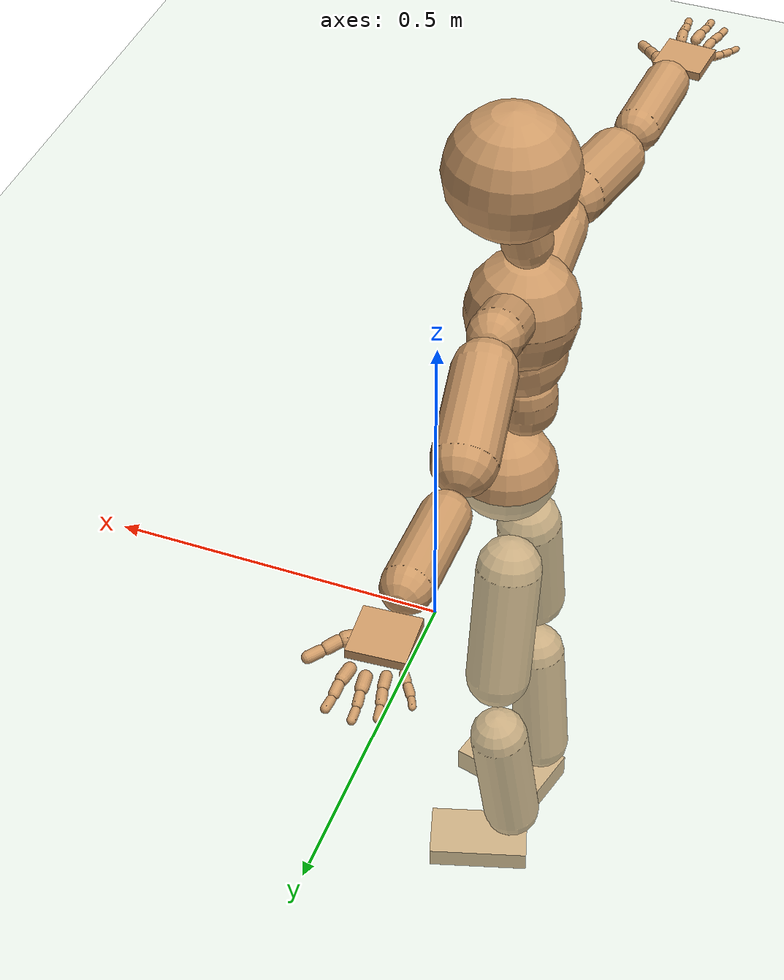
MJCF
<mujoco model="humanoid">
  <compiler coordinate="local" angle="radian"/>
  <default>
    <joint damping="0.0" armature="0.01" stiffness="0.0" limited="true"/>
    <geom conaffinity="1" condim="3" contype="7" margin="0.001" rgba="0.8 0.6 .4 1"/>
  </default>
  <asset>
    <texture type="skybox" builtin="gradient" rgb1=".4 .5 .6" rgb2="0 0 0" width="100" height="100"/>
    <texture builtin="flat" height="1278" mark="cross" markrgb="1 1 1" name="texgeom" random="0.01" rgb1="0.8 0.6 0.4" rgb2="0.8 0.6 0.4" type="cube" width="127"/>
    <texture builtin="checker" height="100" name="texplane" rgb1="0 0 0" rgb2="0.8 0.8 0.8" type="2d" width="100"/>
    <material name="MatPlane" reflectance="0.5" shininess="1" specular="1" texrepeat="60 60" texture="texplane"/>
    <material name="geom" texture="texgeom" texuniform="true"/>
  </asset>
  <worldbody>
    <light cutoff="100" diffuse="1 1 1" dir="-0 0 -1.3" directional="true" exponent="1" pos="0 0 1.3" specular=".1 .1 .1"/>
    <geom conaffinity="1" condim="3" name="floor" pos="0 0 0" rgba="0.8 0.9 0.8 1" size="100 100 .2" type="plane" material="MatPlane"/>
    <body name="Pelvis" pos="0.0005 -0.3226 -0.0007">
      <freejoint name="Pelvis"/>
      <geom type="sphere" contype="1" conaffinity="1" density="500" size="0.0812" pos="0.0000 0.0000 0.0000" name="Pelvis"/>
      <body name="L_Hip" pos="-0.0282 0.0451 -0.0817">
        <joint name="L_Hip_x" type="hinge" pos="0 0 0" axis="1 0 0" stiffness="800" damping="80" armature="0.02" range="-180.0000 180.0000"/>
        <joint name="L_Hip_y" type="hinge" pos="0 0 0" axis="0 1 0" stiffness="800" damping="80" armature="0.02" range="-180.0000 180.0000"/>
        <joint name="L_Hip_z" type="hinge" pos="0 0 0" axis="0 0 1" stiffness="800" damping="80" armature="0.02" range="-180.0000 180.0000"/>
        <geom type="capsule" contype="1" conaffinity="1" density="500" fromto="-0.0002 0.0134 -0.0706 -0.0008 0.0537 -0.2825" size="0.0529" name="L_Hip"/>
        <body name="L_Knee" pos="-0.001 0.0671 -0.3532">
          <joint name="L_Knee_x" type="hinge" pos="0 0 0" axis="1 0 0" stiffness="800" damping="80" armature="0.02" range="-180.0000 180.0000"/>
          <joint name="L_Knee_y" type="hinge" pos="0 0 0" axis="0 1 0" stiffness="800" damping="80" armature="0.02" range="-180.0000 180.0000"/>
          <joint name="L_Knee_z" type="hinge" pos="0 0 0" axis="0 0 1" stiffness="800" damping="80" armature="0.02" range="-180.0000 180.0000"/>
          <geom type="capsule" contype="1" conaffinity="1" density="500" fromto="-0.0067 -0.0080 -0.0720 -0.0270 -0.0321 -0.2879" size="0.0479" name="L_Knee"/>
          <body name="L_Ankle" pos="-0.0337 -0.0401 -0.3599">
            <joint name="L_Ankle_x" type="hinge" pos="0 0 0" axis="1 0 0" stiffness="800" damping="80" armature="0.02" range="-180.0000 180.0000"/>
            <joint name="L_Ankle_y" type="hinge" pos="0 0 0" axis="0 1 0" stiffness="800" damping="80" armature="0.02" range="-180.0000 180.0000"/>
            <joint name="L_Ankle_z" type="hinge" pos="0 0 0" axis="0 0 1" stiffness="800" damping="80" armature="0.02" range="-180.0000 180.0000"/>
            <geom type="box" contype="1" conaffinity="1" density="500" pos="0.0613 0.0188 -0.0254" size="0.0845 0.0476 0.0185" quat="0.9889 0.0000 0.0000 0.1483" name="L_Ankle"/>
            <body name="L_Toe" pos="0.1225 0.0376 -0.0508">
              <joint name="L_Toe_x" type="hinge" pos="0 0 0" axis="1 0 0" stiffness="500" damping="50" armature="0.02" range="-180.0000 180.0000"/>
              <joint name="L_Toe_y" type="hinge" pos="0 0 0" axis="0 1 0" stiffness="500" damping="50" armature="0.02" range="-180.0000 180.0000"/>
              <joint name="L_Toe_z" type="hinge" pos="0 0 0" axis="0 0 1" stiffness="500" damping="50" armature="0.02" range="-180.0000 180.0000"/>
              <geom type="box" contype="1" conaffinity="1" density="500" pos="0.0000 0.0000 0.0270" size="0.001 0.0023 0.001" quat="0.9882 0.0000 0.0000 0.1533" name="L_Toe"/>
            </body>
          </body>
        </body>
      </body>
      <body name="R_Hip" pos="-0.0213 -0.0465 -0.0911">
        <joint name="R_Hip_x" type="hinge" pos="0 0 0" axis="1 0 0" stiffness="800" damping="80" armature="0.02" range="-180.0000 180.0000"/>
        <joint name="R_Hip_y" type="hinge" pos="0 0 0" axis="0 1 0" stiffness="800" damping="80" armature="0.02" range="-180.0000 180.0000"/>
        <joint name="R_Hip_z" type="hinge" pos="0 0 0" axis="0 0 1" stiffness="800" damping="80" armature="0.02" range="-180.0000 180.0000"/>
        <geom type="capsule" contype="1" conaffinity="1" density="500" fromto="-0.0016 -0.0105 -0.0677 -0.0064 -0.0420 -0.2708" size="0.0527" name="R_Hip"/>
        <body name="R_Knee" pos="-0.008 -0.0525 -0.3384">
          <joint name="R_Knee_x" type="hinge" pos="0 0 0" axis="1 0 0" stiffness="800" damping="80" armature="0.02" range="-180.0000 180.0000"/>
          <joint name="R_Knee_y" type="hinge" pos="0 0 0" axis="0 1 0" stiffness="800" damping="80" armature="0.02" range="-180.0000 180.0000"/>
          <joint name="R_Knee_z" type="hinge" pos="0 0 0" axis="0 0 1" stiffness="800" damping="80" armature="0.02" range="-180.0000 180.0000"/>
          <geom type="capsule" contype="1" conaffinity="1" density="500" fromto="-0.0067 0.0033 -0.0743 -0.0269 0.0131 -0.2971" size="0.0476" name="R_Knee"/>
          <body name="R_Ankle" pos="-0.0336 0.0164 -0.3714">
            <joint name="R_Ankle_x" type="hinge" pos="0 0 0" axis="1 0 0" stiffness="800" damping="80" armature="0.02" range="-180.0000 180.0000"/>
            <joint name="R_Ankle_y" type="hinge" pos="0 0 0" axis="0 1 0" stiffness="800" damping="80" armature="0.02" range="-180.0000 180.0000"/>
            <joint name="R_Ankle_z" type="hinge" pos="0 0 0" axis="0 0 1" stiffness="800" damping="80" armature="0.02" range="-180.0000 180.0000"/>
            <geom type="box" contype="1" conaffinity="1" density="500" pos="0.0643 -0.0152 -0.0255" size="0.0845 0.0476 0.0224" quat="0.9933 0.0000 0.0000 -0.1156" name="R_Ankle"/>
            <body name="R_Toe" pos="0.1287 -0.0304 -0.051">
              <joint name="R_Toe_x" type="hinge" pos="0 0 0" axis="1 0 0" stiffness="500" damping="50" armature="0.02" range="-180.0000 180.0000"/>
              <joint name="R_Toe_y" type="hinge" pos="0 0 0" axis="0 1 0" stiffness="500" damping="50" armature="0.02" range="-180.0000 180.0000"/>
              <joint name="R_Toe_z" type="hinge" pos="0 0 0" axis="0 0 1" stiffness="500" damping="50" armature="0.02" range="-180.0000 180.0000"/>
              <geom type="box" contype="1" conaffinity="1" density="500" pos="0.0000 0.0000 0.0233" size="0.001 0.0023 0.001" quat="0.9943 0.0000 0.0000 -0.1067" name="R_Toe"/>
            </body>
          </body>
        </body>
      </body>
      <body name="Torso" pos="-0.0275 -0.0008 0.093">
        <joint name="Torso_x" type="hinge" pos="0 0 0" axis="1 0 0" stiffness="1000" damping="100" armature="0.02" range="-180.0000 180.0000"/>
        <joint name="Torso_y" type="hinge" pos="0 0 0" axis="0 1 0" stiffness="1000" damping="100" armature="0.02" range="-180.0000 180.0000"/>
        <joint name="Torso_z" type="hinge" pos="0 0 0" axis="0 0 1" stiffness="1000" damping="100" armature="0.02" range="-180.0000 180.0000"/>
        <geom type="capsule" contype="1" conaffinity="1" density="500" fromto="0.0023 0.0013 0.0792 0.0015 0.0009 0.0528" size="0.0493" name="Torso"/>
        <body name="Spine" pos="0.0038 0.0022 0.1321">
          <joint name="Spine_x" type="hinge" pos="0 0 0" axis="1 0 0" stiffness="1000" damping="100" armature="0.02" range="-180.0000 180.0000"/>
          <joint name="Spine_y" type="hinge" pos="0 0 0" axis="0 1 0" stiffness="1000" damping="100" armature="0.02" range="-180.0000 180.0000"/>
          <joint name="Spine_z" type="hinge" pos="0 0 0" axis="0 0 1" stiffness="1000" damping="100" armature="0.02" range="-180.0000 180.0000"/>
          <geom type="capsule" contype="1" conaffinity="1" density="500" fromto="0.0072 -0.0019 0.0309 0.0048 -0.0013 0.0206" size="0.0678" name="Spine"/>
          <body name="Chest" pos="0.012 -0.0032 0.0515">
            <joint name="Chest_x" type="hinge" pos="0 0 0" axis="1 0 0" stiffness="1000" damping="100" armature="0.02" range="-180.0000 180.0000"/>
            <joint name="Chest_y" type="hinge" pos="0 0 0" axis="0 1 0" stiffness="1000" damping="100" armature="0.02" range="-180.0000 180.0000"/>
            <joint name="Chest_z" type="hinge" pos="0 0 0" axis="0 0 1" stiffness="1000" damping="100" armature="0.02" range="-180.0000 180.0000"/>
            <geom type="capsule" contype="1" conaffinity="1" density="500" fromto="-0.0025 -0.0009 0.0541 -0.0017 -0.0006 0.0360" size="0.0867" name="Chest"/>
            <body name="Neck" pos="-0.0105 -0.0059 0.139">
              <joint name="Neck_x" type="hinge" pos="0 0 0" axis="1 0 0" stiffness="500" damping="50" armature="0.02" range="-180.0000 180.0000"/>
              <joint name="Neck_y" type="hinge" pos="0 0 0" axis="0 1 0" stiffness="500" damping="50" armature="0.02" range="-180.0000 180.0000"/>
              <joint name="Neck_z" type="hinge" pos="0 0 0" axis="0 0 1" stiffness="500" damping="50" armature="0.02" range="-180.0000 180.0000"/>
              <geom type="capsule" contype="1" conaffinity="1" density="500" fromto="0.0053 0.0040 0.0317 0.0213 0.0158 0.1270" size="0.0386" name="Neck"/>
              <body name="Head" pos="0.0266 0.0198 0.1587">
                <joint name="Head_x" type="hinge" pos="0 0 0" axis="1 0 0" stiffness="500" damping="50" armature="0.02" range="-180.0000 180.0000"/>
                <joint name="Head_y" type="hinge" pos="0 0 0" axis="0 1 0" stiffness="500" damping="50" armature="0.02" range="-180.0000 180.0000"/>
                <joint name="Head_z" type="hinge" pos="0 0 0" axis="0 0 1" stiffness="500" damping="50" armature="0.02" range="-180.0000 180.0000"/>
                <geom type="sphere" contype="1" conaffinity="1" density="500" size="0.1000" pos="0.0000 0.0000 0.0000" name="Head"/>
              </body>
            </body>
            <body name="L_Thorax" pos="0.001 0.039 0.0658">
              <joint name="L_Thorax_x" type="hinge" pos="0 0 0" axis="1 0 0" stiffness="500" damping="50" armature="0.02" range="-180.0000 180.0000"/>
              <joint name="L_Thorax_y" type="hinge" pos="0 0 0" axis="0 1 0" stiffness="500" damping="50" armature="0.02" range="-180.0000 180.0000"/>
              <joint name="L_Thorax_z" type="hinge" pos="0 0 0" axis="0 0 1" stiffness="500" damping="50" armature="0.02" range="-180.0000 180.0000"/>
              <geom type="capsule" contype="1" conaffinity="1" density="500" fromto="-0.0023 0.0255 0.0109 -0.0094 0.1019 0.0435" size="0.0421" name="L_Thorax"/>
              <body name="L_Shoulder" pos="-0.0117 0.1273 0.0544">
                <joint name="L_Shoulder_x" type="hinge" pos="0 0 0" axis="1 0 0" stiffness="500" damping="50" armature="0.02" range="-180.0000 180.0000"/>
                <joint name="L_Shoulder_y" type="hinge" pos="0 0 0" axis="0 1 0" stiffness="500" damping="50" armature="0.02" range="-180.0000 180.0000"/>
                <joint name="L_Shoulder_z" type="hinge" pos="0 0 0" axis="0 0 1" stiffness="500" damping="50" armature="0.02" range="-180.0000 180.0000"/>
                <geom type="capsule" contype="1" conaffinity="1" density="500" fromto="-0.0071 0.0469 -0.0134 -0.0286 0.1875 -0.0537" size="0.0478" name="L_Shoulder"/>
                <body name="L_Elbow" pos="-0.0357 0.2343 -0.0671">
                  <joint name="L_Elbow_x" type="hinge" pos="0 0 0" axis="1 0 0" stiffness="500" damping="50" armature="0.02" range="-720.0000 720.0000"/>
                  <joint name="L_Elbow_y" type="hinge" pos="0 0 0" axis="0 1 0" stiffness="500" damping="50" armature="0.02" range="-720.0000 720.0000"/>
                  <joint name="L_Elbow_z" type="hinge" pos="0 0 0" axis="0 0 1" stiffness="500" damping="50" armature="0.02" range="-720.0000 720.0000"/>
                  <geom type="capsule" contype="1" conaffinity="1" density="500" fromto="-0.0008 0.0491 0.0037 -0.0031 0.1963 0.0150" size="0.0361" name="L_Elbow"/>
                  <body name="L_Wrist" pos="-0.0039 0.2454 0.0187">
                    <joint name="L_Wrist_x" type="hinge" pos="0 0 0" axis="1 0 0" stiffness="300" damping="30" armature="0.02" range="-180.0000 180.0000"/>
                    <joint name="L_Wrist_y" type="hinge" pos="0 0 0" axis="0 1 0" stiffness="300" damping="30" armature="0.02" range="-180.0000 180.0000"/>
                    <joint name="L_Wrist_z" type="hinge" pos="0 0 0" axis="0 0 1" stiffness="300" damping="30" armature="0.02" range="-180.0000 180.0000"/>
                    <geom type="box" contype="1" conaffinity="1" density="500" pos="-0.0028 0.0395 -0.0057" size="0.0391 0.0395 0.007" quat="0.7316 0.0000 0.0000 -0.6817" name="L_Wrist"/>
                    <body name="L_Index1" pos="0.0188 0.093 -0.009">
                      <joint name="L_Index1_x" type="hinge" pos="0 0 0" axis="1 0 0" stiffness="100" damping="10" armature="0.02" range="-180.0000 180.0000"/>
                      <joint name="L_Index1_y" type="hinge" pos="0 0 0" axis="0 1 0" stiffness="100" damping="10" armature="0.02" range="-180.0000 180.0000"/>
                      <joint name="L_Index1_z" type="hinge" pos="0 0 0" axis="0 0 1" stiffness="100" damping="10" armature="0.02" range="-180.0000 180.0000"/>
                      <geom type="capsule" contype="1" conaffinity="1" density="500" fromto="0.0007 0.0063 0.0002 0.0029 0.0253 0.0010" size="0.0088" name="L_Index1"/>
                      <body name="L_Index2" pos="0.0036 0.0316 0.0012">
                        <joint name="L_Index2_x" type="hinge" pos="0 0 0" axis="1 0 0" stiffness="100" damping="10" armature="0.02" range="-180.0000 180.0000"/>
                        <joint name="L_Index2_y" type="hinge" pos="0 0 0" axis="0 1 0" stiffness="100" damping="10" armature="0.02" range="-180.0000 180.0000"/>
                        <joint name="L_Index2_z" type="hinge" pos="0 0 0" axis="0 0 1" stiffness="100" damping="10" armature="0.02" range="-180.0000 180.0000"/>
                        <geom type="capsule" contype="1" conaffinity="1" density="500" fromto="-0.0000 0.0045 -0.0005 -0.0000 0.0180 -0.0021" size="0.0074" name="L_Index2"/>
                        <body name="L_Index3" pos="0 0.0225 -0.0026">
                          <joint name="L_Index3_x" type="hinge" pos="0 0 0" axis="1 0 0" stiffness="100" damping="10" armature="0.02" range="-180.0000 180.0000"/>
                          <joint name="L_Index3_y" type="hinge" pos="0 0 0" axis="0 1 0" stiffness="100" damping="10" armature="0.02" range="-180.0000 180.0000"/>
                          <joint name="L_Index3_z" type="hinge" pos="0 0 0" axis="0 0 1" stiffness="100" damping="10" armature="0.02" range="-180.0000 180.0000"/>
                          <geom type="capsule" contype="1" conaffinity="1" density="500" fromto="0.0004 0.0049 -0.0001 0.0016 0.0196 -0.0005" size="0.0063" name="L_Index3"/>
                        </body>
                      </body>
                    </body>
                    <body name="L_Middle1" pos="-0.0033 0.1005 -0.0068">
                      <joint name="L_Middle1_x" type="hinge" pos="0 0 0" axis="1 0 0" stiffness="100" damping="10" armature="0.02" range="-180.0000 180.0000"/>
                      <joint name="L_Middle1_y" type="hinge" pos="0 0 0" axis="0 1 0" stiffness="100" damping="10" armature="0.02" range="-180.0000 180.0000"/>
                      <joint name="L_Middle1_z" type="hinge" pos="0 0 0" axis="0 0 1" stiffness="100" damping="10" armature="0.02" range="-180.0000 180.0000"/>
                      <geom type="capsule" contype="1" conaffinity="1" density="500" fromto="-0.0008 0.0060 0.0000 -0.0032 0.0242 0.0000" size="0.0089" name="L_Middle1"/>
                      <body name="L_Middle2" pos="-0.0039 0.0302 0">
                        <joint name="L_Middle2_x" type="hinge" pos="0 0 0" axis="1 0 0" stiffness="100" damping="10" armature="0.02" range="-180.0000 180.0000"/>
                        <joint name="L_Middle2_y" type="hinge" pos="0 0 0" axis="0 1 0" stiffness="100" damping="10" armature="0.02" range="-180.0000 180.0000"/>
                        <joint name="L_Middle2_z" type="hinge" pos="0 0 0" axis="0 0 1" stiffness="100" damping="10" armature="0.02" range="-180.0000 180.0000"/>
                        <geom type="capsule" contype="1" conaffinity="1" density="500" fromto="-0.0008 0.0046 -0.0005 -0.0032 0.0185 -0.0019" size="0.0067" name="L_Middle2"/>
                        <body name="L_Middle3" pos="-0.004 0.0231 -0.0023">
                          <joint name="L_Middle3_x" type="hinge" pos="0 0 0" axis="1 0 0" stiffness="100" damping="10" armature="0.02" range="-180.0000 180.0000"/>
                          <joint name="L_Middle3_y" type="hinge" pos="0 0 0" axis="0 1 0" stiffness="100" damping="10" armature="0.02" range="-180.0000 180.0000"/>
                          <joint name="L_Middle3_z" type="hinge" pos="0 0 0" axis="0 0 1" stiffness="100" damping="10" armature="0.02" range="-180.0000 180.0000"/>
                          <geom type="capsule" contype="1" conaffinity="1" density="500" fromto="-0.0004 0.0050 -0.0001 -0.0016 0.0201 -0.0003" size="0.006" name="L_Middle3"/>
                        </body>
                      </body>
                    </body>
                    <body name="L_Pinky1" pos="-0.042 0.0767 -0.0138">
                      <joint name="L_Pinky1_x" type="hinge" pos="0 0 0" axis="1 0 0" stiffness="100" damping="10" armature="0.02" range="-180.0000 180.0000"/>
                      <joint name="L_Pinky1_y" type="hinge" pos="0 0 0" axis="0 1 0" stiffness="100" damping="10" armature="0.02" range="-180.0000 180.0000"/>
                      <joint name="L_Pinky1_z" type="hinge" pos="0 0 0" axis="0 0 1" stiffness="100" damping="10" armature="0.02" range="-180.0000 180.0000"/>
                      <geom type="capsule" contype="1" conaffinity="1" density="500" fromto="-0.0023 0.0032 -0.0003 -0.0090 0.0128 -0.0014" size="0.0065" name="L_Pinky1"/>
                      <body name="L_Pinky2" pos="-0.0113 0.016 -0.0017">
                        <joint name="L_Pinky2_x" type="hinge" pos="0 0 0" axis="1 0 0" stiffness="100" damping="10" armature="0.02" range="-180.0000 180.0000"/>
                        <joint name="L_Pinky2_y" type="hinge" pos="0 0 0" axis="0 1 0" stiffness="100" damping="10" armature="0.02" range="-180.0000 180.0000"/>
                        <joint name="L_Pinky2_z" type="hinge" pos="0 0 0" axis="0 0 1" stiffness="100" damping="10" armature="0.02" range="-180.0000 180.0000"/>
                        <geom type="capsule" contype="1" conaffinity="1" density="500" fromto="-0.0022 0.0032 -0.0004 -0.0086 0.0126 -0.0014" size="0.0063" name="L_Pinky2"/>
                        <body name="L_Pinky3" pos="-0.0108 0.0158 -0.0018">
                          <joint name="L_Pinky3_x" type="hinge" pos="0 0 0" axis="1 0 0" stiffness="100" damping="10" armature="0.02" range="-180.0000 180.0000"/>
                          <joint name="L_Pinky3_y" type="hinge" pos="0 0 0" axis="0 1 0" stiffness="100" damping="10" armature="0.02" range="-180.0000 180.0000"/>
                          <joint name="L_Pinky3_z" type="hinge" pos="0 0 0" axis="0 0 1" stiffness="100" damping="10" armature="0.02" range="-180.0000 180.0000"/>
                          <geom type="capsule" contype="1" conaffinity="1" density="500" fromto="-0.0018 0.0036 0.0000 -0.0070 0.0142 0.0002" size="0.0049" name="L_Pinky3"/>
                        </body>
                      </body>
                    </body>
                    <body name="L_Ring1" pos="-0.0257 0.0892 -0.0091">
                      <joint name="L_Ring1_x" type="hinge" pos="0 0 0" axis="1 0 0" stiffness="100" damping="10" armature="0.02" range="-180.0000 180.0000"/>
                      <joint name="L_Ring1_y" type="hinge" pos="0 0 0" axis="0 1 0" stiffness="100" damping="10" armature="0.02" range="-180.0000 180.0000"/>
                      <joint name="L_Ring1_z" type="hinge" pos="0 0 0" axis="0 0 1" stiffness="100" damping="10" armature="0.02" range="-180.0000 180.0000"/>
                      <geom type="capsule" contype="1" conaffinity="1" density="500" fromto="-0.0009 0.0055 0.0001 -0.0037 0.0222 0.0003" size="0.0076" name="L_Ring1"/>
                      <body name="L_Ring2" pos="-0.0047 0.0277 0.0004">
                        <joint name="L_Ring2_x" type="hinge" pos="0 0 0" axis="1 0 0" stiffness="100" damping="10" armature="0.02" range="-180.0000 180.0000"/>
                        <joint name="L_Ring2_y" type="hinge" pos="0 0 0" axis="0 1 0" stiffness="100" damping="10" armature="0.02" range="-180.0000 180.0000"/>
                        <joint name="L_Ring2_z" type="hinge" pos="0 0 0" axis="0 0 1" stiffness="100" damping="10" armature="0.02" range="-180.0000 180.0000"/>
                        <geom type="capsule" contype="1" conaffinity="1" density="500" fromto="-0.0013 0.0045 -0.0004 -0.0051 0.0181 -0.0016" size="0.0072" name="L_Ring2"/>
                        <body name="L_Ring3" pos="-0.0064 0.0227 -0.002">
                          <joint name="L_Ring3_x" type="hinge" pos="0 0 0" axis="1 0 0" stiffness="100" damping="10" armature="0.02" range="-180.0000 180.0000"/>
                          <joint name="L_Ring3_y" type="hinge" pos="0 0 0" axis="0 1 0" stiffness="100" damping="10" armature="0.02" range="-180.0000 180.0000"/>
                          <joint name="L_Ring3_z" type="hinge" pos="0 0 0" axis="0 0 1" stiffness="100" damping="10" armature="0.02" range="-180.0000 180.0000"/>
                          <geom type="capsule" contype="1" conaffinity="1" density="500" fromto="-0.0009 0.0049 -0.0000 -0.0035 0.0197 -0.0000" size="0.0057" name="L_Ring3"/>
                        </body>
                      </body>
                    </body>
                    <body name="L_Thumb1" pos="0.0242 0.0355 -0.0186">
                      <joint name="L_Thumb1_x" type="hinge" pos="0 0 0" axis="1 0 0" stiffness="100" damping="10" armature="0.02" range="-180.0000 180.0000"/>
                      <joint name="L_Thumb1_y" type="hinge" pos="0 0 0" axis="0 1 0" stiffness="100" damping="10" armature="0.02" range="-180.0000 180.0000"/>
                      <joint name="L_Thumb1_z" type="hinge" pos="0 0 0" axis="0 0 1" stiffness="100" damping="10" armature="0.02" range="-180.0000 180.0000"/>
                      <geom type="capsule" contype="1" conaffinity="1" density="500" fromto="0.0051 0.0031 0.0003 0.0203 0.0126 0.0012" size="0.0114" name="L_Thumb1"/>
                      <body name="L_Thumb2" pos="0.0253 0.0157 0.0015">
                        <joint name="L_Thumb2_x" type="hinge" pos="0 0 0" axis="1 0 0" stiffness="100" damping="10" armature="0.02" range="-180.0000 180.0000"/>
                        <joint name="L_Thumb2_y" type="hinge" pos="0 0 0" axis="0 1 0" stiffness="100" damping="10" armature="0.02" range="-180.0000 180.0000"/>
                        <joint name="L_Thumb2_z" type="hinge" pos="0 0 0" axis="0 0 1" stiffness="100" damping="10" armature="0.02" range="-180.0000 180.0000"/>
                        <geom type="capsule" contype="1" conaffinity="1" density="500" fromto="0.0032 0.0039 -0.0009 0.0129 0.0155 -0.0036" size="0.0092" name="L_Thumb2"/>
                        <body name="L_Thumb3" pos="0.0162 0.0193 -0.0045">
                          <joint name="L_Thumb3_x" type="hinge" pos="0 0 0" axis="1 0 0" stiffness="100" damping="10" armature="0.02" range="-180.0000 180.0000"/>
                          <joint name="L_Thumb3_y" type="hinge" pos="0 0 0" axis="0 1 0" stiffness="100" damping="10" armature="0.02" range="-180.0000 180.0000"/>
                          <joint name="L_Thumb3_z" type="hinge" pos="0 0 0" axis="0 0 1" stiffness="100" damping="10" armature="0.02" range="-180.0000 180.0000"/>
                          <geom type="capsule" contype="1" conaffinity="1" density="500" fromto="0.0036 0.0043 -0.0005 0.0145 0.0171 -0.0020" size="0.0084" name="L_Thumb3"/>
                        </body>
                      </body>
                    </body>
                  </body>
                </body>
              </body>
            </body>
            <body name="R_Thorax" pos="-0.0032 -0.0374 0.0657">
              <joint name="R_Thorax_x" type="hinge" pos="0 0 0" axis="1 0 0" stiffness="500" damping="50" armature="0.02" range="-180.0000 180.0000"/>
              <joint name="R_Thorax_y" type="hinge" pos="0 0 0" axis="0 1 0" stiffness="500" damping="50" armature="0.02" range="-180.0000 180.0000"/>
              <joint name="R_Thorax_z" type="hinge" pos="0 0 0" axis="0 0 1" stiffness="500" damping="50" armature="0.02" range="-180.0000 180.0000"/>
              <geom type="capsule" contype="1" conaffinity="1" density="500" fromto="-0.0010 -0.0239 0.0108 -0.0041 -0.0955 0.0433" size="0.0492" name="R_Thorax"/>
              <body name="R_Shoulder" pos="-0.0051 -0.1194 0.0541">
                <joint name="R_Shoulder_x" type="hinge" pos="0 0 0" axis="1 0 0" stiffness="500" damping="50" armature="0.02" range="-180.0000 180.0000"/>
                <joint name="R_Shoulder_y" type="hinge" pos="0 0 0" axis="0 1 0" stiffness="500" damping="50" armature="0.02" range="-180.0000 180.0000"/>
                <joint name="R_Shoulder_z" type="hinge" pos="0 0 0" axis="0 0 1" stiffness="500" damping="50" armature="0.02" range="-180.0000 180.0000"/>
                <geom type="capsule" contype="1" conaffinity="1" density="500" fromto="-0.0058 -0.0497 -0.0086 -0.0234 -0.1990 -0.0345" size="0.0471" name="R_Shoulder"/>
                <body name="R_Elbow" pos="-0.0292 -0.2487 -0.0431">
                  <joint name="R_Elbow_x" type="hinge" pos="0 0 0" axis="1 0 0" stiffness="500" damping="50" armature="0.02" range="-720.0000 720.0000"/>
                  <joint name="R_Elbow_y" type="hinge" pos="0 0 0" axis="0 1 0" stiffness="500" damping="50" armature="0.02" range="-720.0000 720.0000"/>
                  <joint name="R_Elbow_z" type="hinge" pos="0 0 0" axis="0 0 1" stiffness="500" damping="50" armature="0.02" range="-720.0000 720.0000"/>
                  <geom type="capsule" contype="1" conaffinity="1" density="500" fromto="-0.0024 -0.0476 -0.0004 -0.0095 -0.1905 -0.0015" size="0.0369" name="R_Elbow"/>
                  <body name="R_Wrist" pos="-0.0119 -0.2381 -0.0019">
                    <joint name="R_Wrist_x" type="hinge" pos="0 0 0" axis="1 0 0" stiffness="300" damping="30" armature="0.02" range="-180.0000 180.0000"/>
                    <joint name="R_Wrist_y" type="hinge" pos="0 0 0" axis="0 1 0" stiffness="300" damping="30" armature="0.02" range="-180.0000 180.0000"/>
                    <joint name="R_Wrist_z" type="hinge" pos="0 0 0" axis="0 0 1" stiffness="300" damping="30" armature="0.02" range="-180.0000 180.0000"/>
                    <geom type="box" contype="1" conaffinity="1" density="500" pos="-0.0033 -0.0394 -0.0072" size="0.0391 0.0407 0.0071" quat="0.7360 0.0000 0.0000 0.6770" name="R_Wrist"/>
                    <body name="R_Index1" pos="0.0178 -0.0929 -0.012">
                      <joint name="R_Index1_x" type="hinge" pos="0 0 0" axis="1 0 0" stiffness="100" damping="10" armature="0.02" range="-180.0000 180.0000"/>
                      <joint name="R_Index1_y" type="hinge" pos="0 0 0" axis="0 1 0" stiffness="100" damping="10" armature="0.02" range="-180.0000 180.0000"/>
                      <joint name="R_Index1_z" type="hinge" pos="0 0 0" axis="0 0 1" stiffness="100" damping="10" armature="0.02" range="-180.0000 180.0000"/>
                      <geom type="capsule" contype="1" conaffinity="1" density="500" fromto="0.0007 -0.0063 0.0002 0.0029 -0.0253 0.0010" size="0.0088" name="R_Index1"/>
                      <body name="R_Index2" pos="0.0036 -0.0316 0.0012">
                        <joint name="R_Index2_x" type="hinge" pos="0 0 0" axis="1 0 0" stiffness="100" damping="10" armature="0.02" range="-180.0000 180.0000"/>
                        <joint name="R_Index2_y" type="hinge" pos="0 0 0" axis="0 1 0" stiffness="100" damping="10" armature="0.02" range="-180.0000 180.0000"/>
                        <joint name="R_Index2_z" type="hinge" pos="0 0 0" axis="0 0 1" stiffness="100" damping="10" armature="0.02" range="-180.0000 180.0000"/>
                        <geom type="capsule" contype="1" conaffinity="1" density="500" fromto="-0.0000 -0.0045 -0.0005 -0.0000 -0.0180 -0.0021" size="0.0074" name="R_Index2"/>
                        <body name="R_Index3" pos="0 -0.0225 -0.0026">
                          <joint name="R_Index3_x" type="hinge" pos="0 0 0" axis="1 0 0" stiffness="100" damping="10" armature="0.02" range="-180.0000 180.0000"/>
                          <joint name="R_Index3_y" type="hinge" pos="0 0 0" axis="0 1 0" stiffness="100" damping="10" armature="0.02" range="-180.0000 180.0000"/>
                          <joint name="R_Index3_z" type="hinge" pos="0 0 0" axis="0 0 1" stiffness="100" damping="10" armature="0.02" range="-180.0000 180.0000"/>
                          <geom type="capsule" contype="1" conaffinity="1" density="500" fromto="0.0004 -0.0041 -0.0001 0.0016 -0.0164 -0.0005" size="0.0066" name="R_Index3"/>
                        </body>
                      </body>
                    </body>
                    <body name="R_Middle1" pos="-0.0043 -0.1004 -0.0098">
                      <joint name="R_Middle1_x" type="hinge" pos="0 0 0" axis="1 0 0" stiffness="100" damping="10" armature="0.02" range="-180.0000 180.0000"/>
                      <joint name="R_Middle1_y" type="hinge" pos="0 0 0" axis="0 1 0" stiffness="100" damping="10" armature="0.02" range="-180.0000 180.0000"/>
                      <joint name="R_Middle1_z" type="hinge" pos="0 0 0" axis="0 0 1" stiffness="100" damping="10" armature="0.02" range="-180.0000 180.0000"/>
                      <geom type="capsule" contype="1" conaffinity="1" density="500" fromto="-0.0008 -0.0060 0.0000 -0.0032 -0.0242 0.0000" size="0.0089" name="R_Middle1"/>
                      <body name="R_Middle2" pos="-0.0039 -0.0302 0">
                        <joint name="R_Middle2_x" type="hinge" pos="0 0 0" axis="1 0 0" stiffness="100" damping="10" armature="0.02" range="-180.0000 180.0000"/>
                        <joint name="R_Middle2_y" type="hinge" pos="0 0 0" axis="0 1 0" stiffness="100" damping="10" armature="0.02" range="-180.0000 180.0000"/>
                        <joint name="R_Middle2_z" type="hinge" pos="0 0 0" axis="0 0 1" stiffness="100" damping="10" armature="0.02" range="-180.0000 180.0000"/>
                        <geom type="capsule" contype="1" conaffinity="1" density="500" fromto="-0.0008 -0.0046 -0.0005 -0.0032 -0.0185 -0.0019" size="0.0067" name="R_Middle2"/>
                        <body name="R_Middle3" pos="-0.004 -0.0231 -0.0023">
                          <joint name="R_Middle3_x" type="hinge" pos="0 0 0" axis="1 0 0" stiffness="100" damping="10" armature="0.02" range="-180.0000 180.0000"/>
                          <joint name="R_Middle3_y" type="hinge" pos="0 0 0" axis="0 1 0" stiffness="100" damping="10" armature="0.02" range="-180.0000 180.0000"/>
                          <joint name="R_Middle3_z" type="hinge" pos="0 0 0" axis="0 0 1" stiffness="100" damping="10" armature="0.02" range="-180.0000 180.0000"/>
                          <geom type="capsule" contype="1" conaffinity="1" density="500" fromto="-0.0004 -0.0042 -0.0001 -0.0016 -0.0169 -0.0003" size="0.0063" name="R_Middle3"/>
                        </body>
                      </body>
                    </body>
                    <body name="R_Pinky1" pos="-0.043 -0.0766 -0.0168">
                      <joint name="R_Pinky1_x" type="hinge" pos="0 0 0" axis="1 0 0" stiffness="100" damping="10" armature="0.02" range="-180.0000 180.0000"/>
                      <joint name="R_Pinky1_y" type="hinge" pos="0 0 0" axis="0 1 0" stiffness="100" damping="10" armature="0.02" range="-180.0000 180.0000"/>
                      <joint name="R_Pinky1_z" type="hinge" pos="0 0 0" axis="0 0 1" stiffness="100" damping="10" armature="0.02" range="-180.0000 180.0000"/>
                      <geom type="capsule" contype="1" conaffinity="1" density="500" fromto="-0.0023 -0.0032 -0.0003 -0.0090 -0.0128 -0.0014" size="0.0065" name="R_Pinky1"/>
                      <body name="R_Pinky2" pos="-0.0113 -0.016 -0.0017">
                        <joint name="R_Pinky2_x" type="hinge" pos="0 0 0" axis="1 0 0" stiffness="100" damping="10" armature="0.02" range="-180.0000 180.0000"/>
                        <joint name="R_Pinky2_y" type="hinge" pos="0 0 0" axis="0 1 0" stiffness="100" damping="10" armature="0.02" range="-180.0000 180.0000"/>
                        <joint name="R_Pinky2_z" type="hinge" pos="0 0 0" axis="0 0 1" stiffness="100" damping="10" armature="0.02" range="-180.0000 180.0000"/>
                        <geom type="capsule" contype="1" conaffinity="1" density="500" fromto="-0.0022 -0.0032 -0.0004 -0.0086 -0.0126 -0.0014" size="0.0063" name="R_Pinky2"/>
                        <body name="R_Pinky3" pos="-0.0108 -0.0158 -0.0018">
                          <joint name="R_Pinky3_x" type="hinge" pos="0 0 0" axis="1 0 0" stiffness="100" damping="10" armature="0.02" range="-180.0000 180.0000"/>
                          <joint name="R_Pinky3_y" type="hinge" pos="0 0 0" axis="0 1 0" stiffness="100" damping="10" armature="0.02" range="-180.0000 180.0000"/>
                          <joint name="R_Pinky3_z" type="hinge" pos="0 0 0" axis="0 0 1" stiffness="100" damping="10" armature="0.02" range="-180.0000 180.0000"/>
                          <geom type="capsule" contype="1" conaffinity="1" density="500" fromto="-0.0018 -0.0028 0.0000 -0.0070 -0.0110 0.0002" size="0.0051" name="R_Pinky3"/>
                        </body>
                      </body>
                    </body>
                    <body name="R_Ring1" pos="-0.0267 -0.0891 -0.0121">
                      <joint name="R_Ring1_x" type="hinge" pos="0 0 0" axis="1 0 0" stiffness="100" damping="10" armature="0.02" range="-180.0000 180.0000"/>
                      <joint name="R_Ring1_y" type="hinge" pos="0 0 0" axis="0 1 0" stiffness="100" damping="10" armature="0.02" range="-180.0000 180.0000"/>
                      <joint name="R_Ring1_z" type="hinge" pos="0 0 0" axis="0 0 1" stiffness="100" damping="10" armature="0.02" range="-180.0000 180.0000"/>
                      <geom type="capsule" contype="1" conaffinity="1" density="500" fromto="-0.0009 -0.0055 0.0001 -0.0037 -0.0222 0.0003" size="0.0076" name="R_Ring1"/>
                      <body name="R_Ring2" pos="-0.0047 -0.0277 0.0004">
                        <joint name="R_Ring2_x" type="hinge" pos="0 0 0" axis="1 0 0" stiffness="100" damping="10" armature="0.02" range="-180.0000 180.0000"/>
                        <joint name="R_Ring2_y" type="hinge" pos="0 0 0" axis="0 1 0" stiffness="100" damping="10" armature="0.02" range="-180.0000 180.0000"/>
                        <joint name="R_Ring2_z" type="hinge" pos="0 0 0" axis="0 0 1" stiffness="100" damping="10" armature="0.02" range="-180.0000 180.0000"/>
                        <geom type="capsule" contype="1" conaffinity="1" density="500" fromto="-0.0013 -0.0045 -0.0004 -0.0051 -0.0181 -0.0016" size="0.0072" name="R_Ring2"/>
                        <body name="R_Ring3" pos="-0.0064 -0.0227 -0.002">
                          <joint name="R_Ring3_x" type="hinge" pos="0 0 0" axis="1 0 0" stiffness="100" damping="10" armature="0.02" range="-180.0000 180.0000"/>
                          <joint name="R_Ring3_y" type="hinge" pos="0 0 0" axis="0 1 0" stiffness="100" damping="10" armature="0.02" range="-180.0000 180.0000"/>
                          <joint name="R_Ring3_z" type="hinge" pos="0 0 0" axis="0 0 1" stiffness="100" damping="10" armature="0.02" range="-180.0000 180.0000"/>
                          <geom type="capsule" contype="1" conaffinity="1" density="500" fromto="-0.0009 -0.0041 -0.0000 -0.0035 -0.0165 -0.0000" size="0.0059" name="R_Ring3"/>
                        </body>
                      </body>
                    </body>
                    <body name="R_Thumb1" pos="0.0232 -0.0354 -0.0216">
                      <joint name="R_Thumb1_x" type="hinge" pos="0 0 0" axis="1 0 0" stiffness="100" damping="10" armature="0.02" range="-180.0000 180.0000"/>
                      <joint name="R_Thumb1_y" type="hinge" pos="0 0 0" axis="0 1 0" stiffness="100" damping="10" armature="0.02" range="-180.0000 180.0000"/>
                      <joint name="R_Thumb1_z" type="hinge" pos="0 0 0" axis="0 0 1" stiffness="100" damping="10" armature="0.02" range="-180.0000 180.0000"/>
                      <geom type="capsule" contype="1" conaffinity="1" density="500" fromto="0.0051 -0.0031 0.0003 0.0203 -0.0126 0.0012" size="0.0114" name="R_Thumb1"/>
                      <body name="R_Thumb2" pos="0.0253 -0.0157 0.0015">
                        <joint name="R_Thumb2_x" type="hinge" pos="0 0 0" axis="1 0 0" stiffness="100" damping="10" armature="0.02" range="-180.0000 180.0000"/>
                        <joint name="R_Thumb2_y" type="hinge" pos="0 0 0" axis="0 1 0" stiffness="100" damping="10" armature="0.02" range="-180.0000 180.0000"/>
                        <joint name="R_Thumb2_z" type="hinge" pos="0 0 0" axis="0 0 1" stiffness="100" damping="10" armature="0.02" range="-180.0000 180.0000"/>
                        <geom type="capsule" contype="1" conaffinity="1" density="500" fromto="0.0032 -0.0039 -0.0009 0.0129 -0.0155 -0.0036" size="0.0092" name="R_Thumb2"/>
                        <body name="R_Thumb3" pos="0.0162 -0.0193 -0.0045">
                          <joint name="R_Thumb3_x" type="hinge" pos="0 0 0" axis="1 0 0" stiffness="100" damping="10" armature="0.02" range="-180.0000 180.0000"/>
                          <joint name="R_Thumb3_y" type="hinge" pos="0 0 0" axis="0 1 0" stiffness="100" damping="10" armature="0.02" range="-180.0000 180.0000"/>
                          <joint name="R_Thumb3_z" type="hinge" pos="0 0 0" axis="0 0 1" stiffness="100" damping="10" armature="0.02" range="-180.0000 180.0000"/>
                          <geom type="capsule" contype="1" conaffinity="1" density="500" fromto="0.0036 -0.0035 -0.0005 0.0145 -0.0139 -0.0020" size="0.0087" name="R_Thumb3"/>
                        </body>
                      </body>
                    </body>
                  </body>
                </body>
              </body>
            </body>
          </body>
        </body>
      </body>
    </body>
  </worldbody>
  <actuator>
    <motor name="L_Hip_x" joint="L_Hip_x" gear="500"/>
    <motor name="L_Hip_y" joint="L_Hip_y" gear="500"/>
    <motor name="L_Hip_z" joint="L_Hip_z" gear="500"/>
    <motor name="L_Knee_x" joint="L_Knee_x" gear="500"/>
    <motor name="L_Knee_y" joint="L_Knee_y" gear="500"/>
    <motor name="L_Knee_z" joint="L_Knee_z" gear="500"/>
    <motor name="L_Ankle_x" joint="L_Ankle_x" gear="500"/>
    <motor name="L_Ankle_y" joint="L_Ankle_y" gear="500"/>
    <motor name="L_Ankle_z" joint="L_Ankle_z" gear="500"/>
    <motor name="L_Toe_x" joint="L_Toe_x" gear="500"/>
    <motor name="L_Toe_y" joint="L_Toe_y" gear="500"/>
    <motor name="L_Toe_z" joint="L_Toe_z" gear="500"/>
    <motor name="R_Hip_x" joint="R_Hip_x" gear="500"/>
    <motor name="R_Hip_y" joint="R_Hip_y" gear="500"/>
    <motor name="R_Hip_z" joint="R_Hip_z" gear="500"/>
    <motor name="R_Knee_x" joint="R_Knee_x" gear="500"/>
    <motor name="R_Knee_y" joint="R_Knee_y" gear="500"/>
    <motor name="R_Knee_z" joint="R_Knee_z" gear="500"/>
    <motor name="R_Ankle_x" joint="R_Ankle_x" gear="500"/>
    <motor name="R_Ankle_y" joint="R_Ankle_y" gear="500"/>
    <motor name="R_Ankle_z" joint="R_Ankle_z" gear="500"/>
    <motor name="R_Toe_x" joint="R_Toe_x" gear="500"/>
    <motor name="R_Toe_y" joint="R_Toe_y" gear="500"/>
    <motor name="R_Toe_z" joint="R_Toe_z" gear="500"/>
    <motor name="Torso_x" joint="Torso_x" gear="500"/>
    <motor name="Torso_y" joint="Torso_y" gear="500"/>
    <motor name="Torso_z" joint="Torso_z" gear="500"/>
    <motor name="Spine_x" joint="Spine_x" gear="500"/>
    <motor name="Spine_y" joint="Spine_y" gear="500"/>
    <motor name="Spine_z" joint="Spine_z" gear="500"/>
    <motor name="Chest_x" joint="Chest_x" gear="500"/>
    <motor name="Chest_y" joint="Chest_y" gear="500"/>
    <motor name="Chest_z" joint="Chest_z" gear="500"/>
    <motor name="Neck_x" joint="Neck_x" gear="500"/>
    <motor name="Neck_y" joint="Neck_y" gear="500"/>
    <motor name="Neck_z" joint="Neck_z" gear="500"/>
    <motor name="Head_x" joint="Head_x" gear="500"/>
    <motor name="Head_y" joint="Head_y" gear="500"/>
    <motor name="Head_z" joint="Head_z" gear="500"/>
    <motor name="L_Thorax_x" joint="L_Thorax_x" gear="500"/>
    <motor name="L_Thorax_y" joint="L_Thorax_y" gear="500"/>
    <motor name="L_Thorax_z" joint="L_Thorax_z" gear="500"/>
    <motor name="L_Shoulder_x" joint="L_Shoulder_x" gear="500"/>
    <motor name="L_Shoulder_y" joint="L_Shoulder_y" gear="500"/>
    <motor name="L_Shoulder_z" joint="L_Shoulder_z" gear="500"/>
    <motor name="L_Elbow_x" joint="L_Elbow_x" gear="500"/>
    <motor name="L_Elbow_y" joint="L_Elbow_y" gear="500"/>
    <motor name="L_Elbow_z" joint="L_Elbow_z" gear="500"/>
    <motor name="L_Wrist_x" joint="L_Wrist_x" gear="500"/>
    <motor name="L_Wrist_y" joint="L_Wrist_y" gear="500"/>
    <motor name="L_Wrist_z" joint="L_Wrist_z" gear="500"/>
    <motor name="L_Index1_x" joint="L_Index1_x" gear="500"/>
    <motor name="L_Index1_y" joint="L_Index1_y" gear="500"/>
    <motor name="L_Index1_z" joint="L_Index1_z" gear="500"/>
    <motor name="L_Index2_x" joint="L_Index2_x" gear="500"/>
    <motor name="L_Index2_y" joint="L_Index2_y" gear="500"/>
    <motor name="L_Index2_z" joint="L_Index2_z" gear="500"/>
    <motor name="L_Index3_x" joint="L_Index3_x" gear="500"/>
    <motor name="L_Index3_y" joint="L_Index3_y" gear="500"/>
    <motor name="L_Index3_z" joint="L_Index3_z" gear="500"/>
    <motor name="L_Middle1_x" joint="L_Middle1_x" gear="500"/>
    <motor name="L_Middle1_y" joint="L_Middle1_y" gear="500"/>
    <motor name="L_Middle1_z" joint="L_Middle1_z" gear="500"/>
    <motor name="L_Middle2_x" joint="L_Middle2_x" gear="500"/>
    <motor name="L_Middle2_y" joint="L_Middle2_y" gear="500"/>
    <motor name="L_Middle2_z" joint="L_Middle2_z" gear="500"/>
    <motor name="L_Middle3_x" joint="L_Middle3_x" gear="500"/>
    <motor name="L_Middle3_y" joint="L_Middle3_y" gear="500"/>
    <motor name="L_Middle3_z" joint="L_Middle3_z" gear="500"/>
    <motor name="L_Pinky1_x" joint="L_Pinky1_x" gear="500"/>
    <motor name="L_Pinky1_y" joint="L_Pinky1_y" gear="500"/>
    <motor name="L_Pinky1_z" joint="L_Pinky1_z" gear="500"/>
    <motor name="L_Pinky2_x" joint="L_Pinky2_x" gear="500"/>
    <motor name="L_Pinky2_y" joint="L_Pinky2_y" gear="500"/>
    <motor name="L_Pinky2_z" joint="L_Pinky2_z" gear="500"/>
    <motor name="L_Pinky3_x" joint="L_Pinky3_x" gear="500"/>
    <motor name="L_Pinky3_y" joint="L_Pinky3_y" gear="500"/>
    <motor name="L_Pinky3_z" joint="L_Pinky3_z" gear="500"/>
    <motor name="L_Ring1_x" joint="L_Ring1_x" gear="500"/>
    <motor name="L_Ring1_y" joint="L_Ring1_y" gear="500"/>
    <motor name="L_Ring1_z" joint="L_Ring1_z" gear="500"/>
    <motor name="L_Ring2_x" joint="L_Ring2_x" gear="500"/>
    <motor name="L_Ring2_y" joint="L_Ring2_y" gear="500"/>
    <motor name="L_Ring2_z" joint="L_Ring2_z" gear="500"/>
    <motor name="L_Ring3_x" joint="L_Ring3_x" gear="500"/>
    <motor name="L_Ring3_y" joint="L_Ring3_y" gear="500"/>
    <motor name="L_Ring3_z" joint="L_Ring3_z" gear="500"/>
    <motor name="L_Thumb1_x" joint="L_Thumb1_x" gear="500"/>
    <motor name="L_Thumb1_y" joint="L_Thumb1_y" gear="500"/>
    <motor name="L_Thumb1_z" joint="L_Thumb1_z" gear="500"/>
    <motor name="L_Thumb2_x" joint="L_Thumb2_x" gear="500"/>
    <motor name="L_Thumb2_y" joint="L_Thumb2_y" gear="500"/>
    <motor name="L_Thumb2_z" joint="L_Thumb2_z" gear="500"/>
    <motor name="L_Thumb3_x" joint="L_Thumb3_x" gear="500"/>
    <motor name="L_Thumb3_y" joint="L_Thumb3_y" gear="500"/>
    <motor name="L_Thumb3_z" joint="L_Thumb3_z" gear="500"/>
    <motor name="R_Thorax_x" joint="R_Thorax_x" gear="500"/>
    <motor name="R_Thorax_y" joint="R_Thorax_y" gear="500"/>
    <motor name="R_Thorax_z" joint="R_Thorax_z" gear="500"/>
    <motor name="R_Shoulder_x" joint="R_Shoulder_x" gear="500"/>
    <motor name="R_Shoulder_y" joint="R_Shoulder_y" gear="500"/>
    <motor name="R_Shoulder_z" joint="R_Shoulder_z" gear="500"/>
    <motor name="R_Elbow_x" joint="R_Elbow_x" gear="500"/>
    <motor name="R_Elbow_y" joint="R_Elbow_y" gear="500"/>
    <motor name="R_Elbow_z" joint="R_Elbow_z" gear="500"/>
    <motor name="R_Wrist_x" joint="R_Wrist_x" gear="500"/>
    <motor name="R_Wrist_y" joint="R_Wrist_y" gear="500"/>
    <motor name="R_Wrist_z" joint="R_Wrist_z" gear="500"/>
    <motor name="R_Index1_x" joint="R_Index1_x" gear="500"/>
    <motor name="R_Index1_y" joint="R_Index1_y" gear="500"/>
    <motor name="R_Index1_z" joint="R_Index1_z" gear="500"/>
    <motor name="R_Index2_x" joint="R_Index2_x" gear="500"/>
    <motor name="R_Index2_y" joint="R_Index2_y" gear="500"/>
    <motor name="R_Index2_z" joint="R_Index2_z" gear="500"/>
    <motor name="R_Index3_x" joint="R_Index3_x" gear="500"/>
    <motor name="R_Index3_y" joint="R_Index3_y" gear="500"/>
    <motor name="R_Index3_z" joint="R_Index3_z" gear="500"/>
    <motor name="R_Middle1_x" joint="R_Middle1_x" gear="500"/>
    <motor name="R_Middle1_y" joint="R_Middle1_y" gear="500"/>
    <motor name="R_Middle1_z" joint="R_Middle1_z" gear="500"/>
    <motor name="R_Middle2_x" joint="R_Middle2_x" gear="500"/>
    <motor name="R_Middle2_y" joint="R_Middle2_y" gear="500"/>
    <motor name="R_Middle2_z" joint="R_Middle2_z" gear="500"/>
    <motor name="R_Middle3_x" joint="R_Middle3_x" gear="500"/>
    <motor name="R_Middle3_y" joint="R_Middle3_y" gear="500"/>
    <motor name="R_Middle3_z" joint="R_Middle3_z" gear="500"/>
    <motor name="R_Pinky1_x" joint="R_Pinky1_x" gear="500"/>
    <motor name="R_Pinky1_y" joint="R_Pinky1_y" gear="500"/>
    <motor name="R_Pinky1_z" joint="R_Pinky1_z" gear="500"/>
    <motor name="R_Pinky2_x" joint="R_Pinky2_x" gear="500"/>
    <motor name="R_Pinky2_y" joint="R_Pinky2_y" gear="500"/>
    <motor name="R_Pinky2_z" joint="R_Pinky2_z" gear="500"/>
    <motor name="R_Pinky3_x" joint="R_Pinky3_x" gear="500"/>
    <motor name="R_Pinky3_y" joint="R_Pinky3_y" gear="500"/>
    <motor name="R_Pinky3_z" joint="R_Pinky3_z" gear="500"/>
    <motor name="R_Ring1_x" joint="R_Ring1_x" gear="500"/>
    <motor name="R_Ring1_y" joint="R_Ring1_y" gear="500"/>
    <motor name="R_Ring1_z" joint="R_Ring1_z" gear="500"/>
    <motor name="R_Ring2_x" joint="R_Ring2_x" gear="500"/>
    <motor name="R_Ring2_y" joint="R_Ring2_y" gear="500"/>
    <motor name="R_Ring2_z" joint="R_Ring2_z" gear="500"/>
    <motor name="R_Ring3_x" joint="R_Ring3_x" gear="500"/>
    <motor name="R_Ring3_y" joint="R_Ring3_y" gear="500"/>
    <motor name="R_Ring3_z" joint="R_Ring3_z" gear="500"/>
    <motor name="R_Thumb1_x" joint="R_Thumb1_x" gear="500"/>
    <motor name="R_Thumb1_y" joint="R_Thumb1_y" gear="500"/>
    <motor name="R_Thumb1_z" joint="R_Thumb1_z" gear="500"/>
    <motor name="R_Thumb2_x" joint="R_Thumb2_x" gear="500"/>
    <motor name="R_Thumb2_y" joint="R_Thumb2_y" gear="500"/>
    <motor name="R_Thumb2_z" joint="R_Thumb2_z" gear="500"/>
    <motor name="R_Thumb3_x" joint="R_Thumb3_x" gear="500"/>
    <motor name="R_Thumb3_y" joint="R_Thumb3_y" gear="500"/>
    <motor name="R_Thumb3_z" joint="R_Thumb3_z" gear="500"/>
  </actuator>
  <contact>
    <exclude body1="Torso" body2="Chest"/>
    <exclude body1="Head" body2="Chest"/>
    <exclude body1="R_Knee" body2="R_Toe"/>
    <exclude body1="R_Knee" body2="L_Ankle"/>
    <exclude body1="R_Knee" body2="L_Toe"/>
    <exclude body1="L_Knee" body2="L_Toe"/>
    <exclude body1="L_Knee" body2="R_Ankle"/>
    <exclude body1="L_Knee" body2="R_Toe"/>
    <exclude body1="L_Shoulder" body2="Chest"/>
    <exclude body1="R_Shoulder" body2="Chest"/>
  </contact>
  <sensor/>
  <size njmax="700" nconmax="700"/>
</mujoco>
